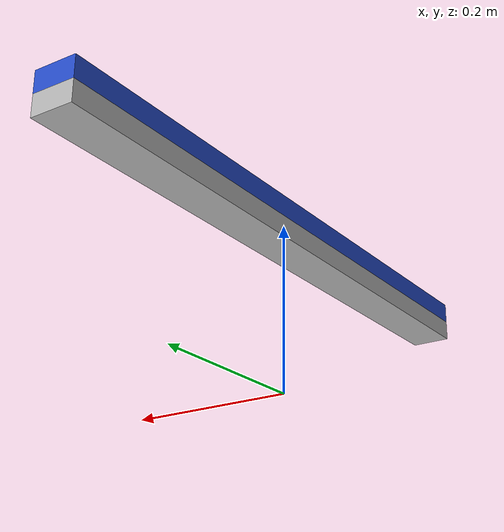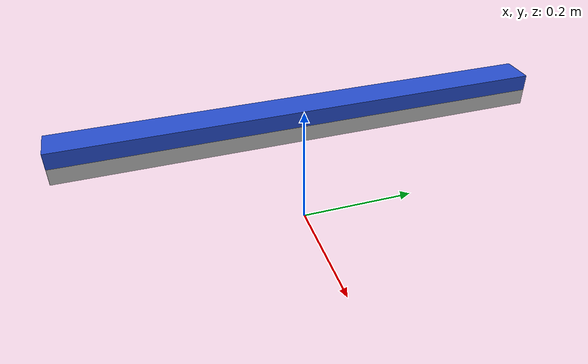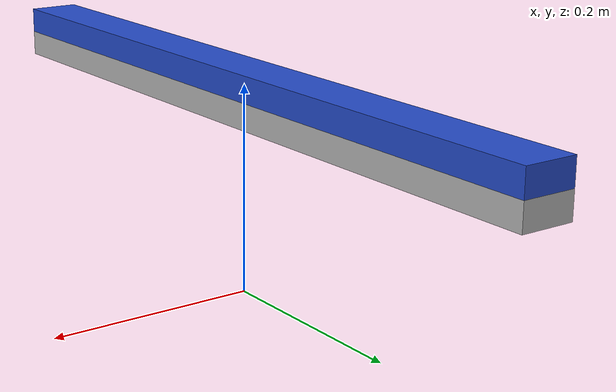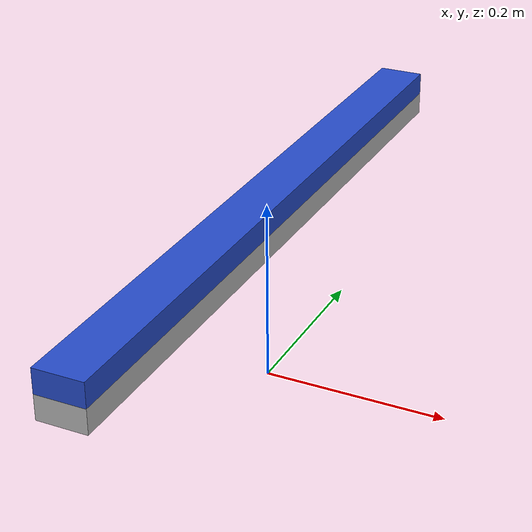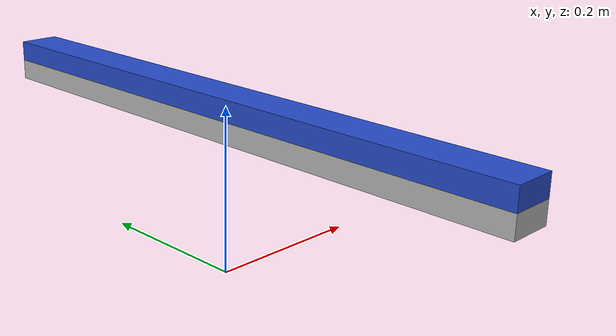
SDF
<!-- A simple fixed chair with FT sensor -->
<?xml version="1.0" ?>
<sdf version="1.5">
  <model name="chair">
    <link name="low_part">
      <pose>0 0 0.18 0 0 0</pose>
      <inertial>
        <mass>1</mass>
      </inertial>
      <collision name="collision_low">
 	<pose>0 0 0.0 0 0 0</pose>
        <geometry>
          <box>
            <size>0.05 0.75 0.025</size>
          </box>
        </geometry>
      </collision>
      <visual name="visual_low">
 	<pose>0 0 0.0 0 0 0</pose>
         <geometry>
           <box>
            <size>0.05 0.75 0.025</size>
	   </box>
         </geometry>
      </visual>
    </link>
    <link name="high_part">
      <pose>0 0 0.205 0 0 0</pose>
      <inertial>
        <mass>1</mass>
      </inertial>
      <collision name='collision_high'>
        <pose>0 0 0 0 0 0</pose>
        <geometry>
          <box>
            <size>0.05 0.75 0.025</size>
          </box>
        </geometry>
        <max_contacts>4</max_contacts>
        <surface>
          <contact>
            <ode>
              <soft_erp>0.2</soft_erp>
              <soft_cfm>0</soft_cfm>
              <kp>1800000</kp>
              <kd>100</kd>
              <max_vel>100</max_vel>
              <min_depth>0.0001</min_depth>
            </ode>
          </contact>
          <friction>
            <ode>
              <mu>1</mu>
              <mu2>1</mu2>
              <fdir1>0 0 0</fdir1>
              <slip1>0</slip1>
              <slip2>0</slip2>
            </ode>
          </friction>
          <bounce>
            <restitution_coefficient>0</restitution_coefficient>
            <threshold>100000</threshold>
          </bounce>
        </surface>
      </collision>
      <visual name="visual_high">
 	<pose>0 0 0.0 0 0 0</pose>
	 <material>
          <script>
            <name>Gazebo/Blue</name>
            <uri>__default__</uri>
          </script>
        </material>
         <geometry>
           <box>
            <size>0.05 0.75 0.025</size>
	   </box>
         </geometry>
      </visual>
    </link>
    <joint name="sensor_joint" type="fixed">
      	<parent>low_part</parent>
      	<child>high_part</child>
       	<axis>
         <limit>
          <lower>0</lower>
          <upper>0</upper>
         </limit>
         <xyz>0 0 0</xyz>
        </axis>
      <sensor name='chair_ft_sensor' type='force_torque'>
         <force_torque>
          <frame>child</frame>
          <measure_direction>parent_to_child</measure_direction>
         </force_torque>
        <always_on>1</always_on>
        <visualize>1</visualize>
        <update_rate>100</update_rate>
       <plugin name='chair_FT_plugin' filename='libgazebo_yarp_forcetorque.so'>
          <yarpConfigurationFile>model://icub_chair_world/chair/chair_gazebo_torque.ini</yarpConfigurationFile>
       </plugin>
      </sensor>
    </joint>
    <joint name="fixed to ground" type="fixed">
      	<parent>world</parent>
      	<child>low_part</child>
       	<axis>
         <limit>
          <lower>0</lower>
          <upper>0</upper>
         </limit>
         <xyz>0 0 0.18</xyz>
        </axis>
    </joint>
  </model>
</sdf>
